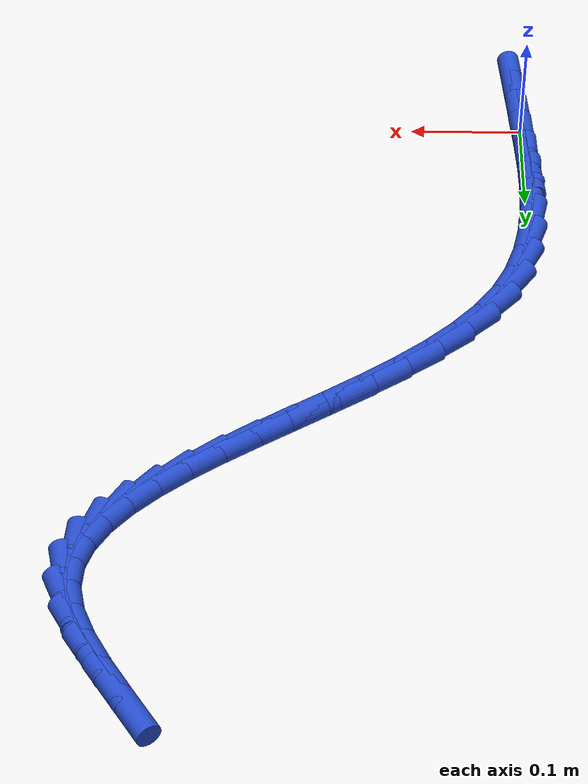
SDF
<sdf version="1.6">
 <world name="default">
  <model name="ground_plane">
   <static>1</static>
   <link name="link">
    <collision name="collision">
     <geometry><plane><normal>0 0 1</normal><size>100 100</size></plane></geometry>
     <surface><friction><ode><mu>100</mu><mu2>50</mu2></ode></friction></surface>
    </collision>
    <visual name="visual">
     <cast_shadows>0</cast_shadows>
     <geometry><plane><normal>0 0 1</normal><size>100 100</size></plane></geometry>
     <material>
      <script><uri>file://media/materials/scripts/gazebo.material</uri><name>Gazebo/WhiteGlow</name></script>
     </material>
    </visual>
   </link>
  </model>
  <model name="line">
   <link name="link_0">
    <pose>-1.2576745200831851e-17 6.938893903907228e-18 0.01 0 1.57 -1.494866581217393</pose>
    <collision name="collision">
     <geometry><cylinder><radius>0.01</radius><length>0.08</length></cylinder></geometry>
    </collision>
    <visual name="visual">
     <material>
      <script><name>Gazebo/Blue</name><uri>file://media/materials/scripts/gazebo.material</uri></script>
     </material>
     <geometry><cylinder><radius>0.01</radius><length>0.08</length></cylinder></geometry>
    </visual>
   </link>
   <link name="link_1">
    <pose>-0.0022657340430550727 0.029782506438946674 0.01 0 1.57 -1.5117864989916552</pose>
    <collision name="collision">
     <geometry><cylinder><radius>0.01</radius><length>0.08</length></cylinder></geometry>
    </collision>
    <visual name="visual">
     <material>
      <script><name>Gazebo/Blue</name><uri>file://media/materials/scripts/gazebo.material</uri></script>
     </material>
     <geometry><cylinder><radius>0.01</radius><length>0.08</length></cylinder></geometry>
    </visual>
   </link>
   <link name="link_2">
    <pose>-0.0040357827391061755 0.059743510461020305 0.01 0 1.57 -1.5465241977232782</pose>
    <collision name="collision">
     <geometry><cylinder><radius>0.01</radius><length>0.08</length></cylinder></geometry>
    </collision>
    <visual name="visual">
     <material>
      <script><name>Gazebo/Blue</name><uri>file://media/materials/scripts/gazebo.material</uri></script>
     </material>
     <geometry><cylinder><radius>0.01</radius><length>0.08</length></cylinder></geometry>
    </visual>
   </link>
   <link name="link_3">
    <pose>-0.004761638501300378 0.08964254452626104 0.01 0 1.57 1.5415160338145841</pose>
    <collision name="collision">
     <geometry><cylinder><radius>0.01</radius><length>0.08</length></cylinder></geometry>
    </collision>
    <visual name="visual">
     <material>
      <script><name>Gazebo/Blue</name><uri>file://media/materials/scripts/gazebo.material</uri></script>
     </material>
     <geometry><cylinder><radius>0.01</radius><length>0.08</length></cylinder></geometry>
    </visual>
   </link>
   <link name="link_4">
    <pose>-0.003894793742784732 0.11923914109470891 0.01 0 1.57 1.4676296312365655</pose>
    <collision name="collision">
     <geometry><cylinder><radius>0.01</radius><length>0.08</length></cylinder></geometry>
    </collision>
    <visual name="visual">
     <material>
      <script><name>Gazebo/Blue</name><uri>file://media/materials/scripts/gazebo.material</uri></script>
     </material>
     <geometry><cylinder><radius>0.01</radius><length>0.08</length></cylinder></geometry>
    </visual>
   </link>
   <link name="link_5">
    <pose>-0.0008867408767062931 0.14829283262640403 0.01 0 1.57 1.37191471027893</pose>
    <collision name="collision">
     <geometry><cylinder><radius>0.01</radius><length>0.08</length></cylinder></geometry>
    </collision>
    <visual name="visual">
     <material>
      <script><name>Gazebo/Blue</name><uri>file://media/materials/scripts/gazebo.material</uri></script>
     </material>
     <geometry><cylinder><radius>0.01</radius><length>0.08</length></cylinder></geometry>
    </visual>
   </link>
   <link name="link_6">
    <pose>0.004811027683787888 0.17656315158138655 0.01 0 1.57 1.2538817009695729</pose>
    <collision name="collision">
     <geometry><cylinder><radius>0.01</radius><length>0.08</length></cylinder></geometry>
    </collision>
    <visual name="visual">
     <material>
      <script><name>Gazebo/Blue</name><uri>file://media/materials/scripts/gazebo.material</uri></script>
     </material>
     <geometry><cylinder><radius>0.01</radius><length>0.08</length></cylinder></geometry>
    </visual>
   </link>
   <link name="link_7">
    <pose>0.013747019525550757 0.20380963041969663 0.01 0 1.57 1.115445793027237</pose>
    <collision name="collision">
     <geometry><cylinder><radius>0.01</radius><length>0.08</length></cylinder></geometry>
    </collision>
    <visual name="visual">
     <material>
      <script><name>Gazebo/Blue</name><uri>file://media/materials/scripts/gazebo.material</uri></script>
     </material>
     <geometry><cylinder><radius>0.01</radius><length>0.08</length></cylinder></geometry>
    </visual>
   </link>
   <link name="link_8">
    <pose>0.026469742235435245 0.22979180160137413 0.01 0 1.57 0.9684534557032066</pose>
    <collision name="collision">
     <geometry><cylinder><radius>0.01</radius><length>0.08</length></cylinder></geometry>
    </collision>
    <visual name="visual">
     <material>
      <script><name>Gazebo/Blue</name><uri>file://media/materials/scripts/gazebo.material</uri></script>
     </material>
     <geometry><cylinder><radius>0.01</radius><length>0.08</length></cylinder></geometry>
    </visual>
   </link>
   <link name="link_9">
    <pose>0.043342757095608635 0.25433144988760825 0.01 0 1.57 0.8452526352798901</pose>
    <collision name="collision">
     <geometry><cylinder><radius>0.01</radius><length>0.08</length></cylinder></geometry>
    </collision>
    <visual name="visual">
     <material>
      <script><name>Gazebo/Blue</name><uri>file://media/materials/scripts/gazebo.material</uri></script>
     </material>
     <geometry><cylinder><radius>0.01</radius><length>0.08</length></cylinder></geometry>
    </visual>
   </link>
   <link name="link_10">
    <pose>0.06391367953497079 0.27752500465638674 0.01 0 1.57 0.7509488821139205</pose>
    <collision name="collision">
     <geometry><cylinder><radius>0.01</radius><length>0.08</length></cylinder></geometry>
    </collision>
    <visual name="visual">
     <material>
      <script><name>Gazebo/Blue</name><uri>file://media/materials/scripts/gazebo.material</uri></script>
     </material>
     <geometry><cylinder><radius>0.01</radius><length>0.08</length></cylinder></geometry>
    </visual>
   </link>
   <link name="link_11">
    <pose>0.0875051781719609 0.2995446116219125 0.01 0 1.57 0.6810572236037761</pose>
    <collision name="collision">
     <geometry><cylinder><radius>0.01</radius><length>0.08</length></cylinder></geometry>
    </collision>
    <visual name="visual">
     <material>
      <script><name>Gazebo/Blue</name><uri>file://media/materials/scripts/gazebo.material</uri></script>
     </material>
     <geometry><cylinder><radius>0.01</radius><length>0.08</length></cylinder></geometry>
    </visual>
   </link>
   <link name="link_12">
    <pose>0.11343991451883886 0.320562418890304 0.01 0 1.57 0.6315152533288507</pose>
    <collision name="collision">
     <geometry><cylinder><radius>0.01</radius><length>0.08</length></cylinder></geometry>
    </collision>
    <visual name="visual">
     <material>
      <script><name>Gazebo/Blue</name><uri>file://media/materials/scripts/gazebo.material</uri></script>
     </material>
     <geometry><cylinder><radius>0.01</radius><length>0.08</length></cylinder></geometry>
    </visual>
   </link>
   <link name="link_13">
    <pose>0.14104055008786476 0.34075057456767993 0.01 0 1.57 0.5993261322269449</pose>
    <collision name="collision">
     <geometry><cylinder><radius>0.01</radius><length>0.08</length></cylinder></geometry>
    </collision>
    <visual name="visual">
     <material>
      <script><name>Gazebo/Blue</name><uri>file://media/materials/scripts/gazebo.material</uri></script>
     </material>
     <geometry><cylinder><radius>0.01</radius><length>0.08</length></cylinder></geometry>
    </visual>
   </link>
   <link name="link_14">
    <pose>0.16962974639129857 0.3602812267601588 0.01 0 1.57 0.5826742077434577</pose>
    <collision name="collision">
     <geometry><cylinder><radius>0.01</radius><length>0.08</length></cylinder></geometry>
    </collision>
    <visual name="visual">
     <material>
      <script><name>Gazebo/Blue</name><uri>file://media/materials/scripts/gazebo.material</uri></script>
     </material>
     <geometry><cylinder><radius>0.01</radius><length>0.08</length></cylinder></geometry>
    </visual>
   </link>
   <link name="link_15">
    <pose>0.1985301649414002 0.3793265235738593 0.01 0 1.57 0.5809144257593694</pose>
    <collision name="collision">
     <geometry><cylinder><radius>0.01</radius><length>0.08</length></cylinder></geometry>
    </collision>
    <visual name="visual">
     <material>
      <script><name>Gazebo/Blue</name><uri>file://media/materials/scripts/gazebo.material</uri></script>
     </material>
     <geometry><cylinder><radius>0.01</radius><length>0.08</length></cylinder></geometry>
    </visual>
   </link>
   <link name="link_16">
    <pose>0.22706446725042975 0.3980586131149004 0.01 0 1.57 0.5946165105800073</pose>
    <collision name="collision">
     <geometry><cylinder><radius>0.01</radius><length>0.08</length></cylinder></geometry>
    </collision>
    <visual name="visual">
     <material>
      <script><name>Gazebo/Blue</name><uri>file://media/materials/scripts/gazebo.material</uri></script>
     </material>
     <geometry><cylinder><radius>0.01</radius><length>0.08</length></cylinder></geometry>
    </visual>
   </link>
   <link name="link_17">
    <pose>0.2545553148306471 0.41664964348940003 0.01 0 1.57 0.6257505566522185</pose>
    <collision name="collision">
     <geometry><cylinder><radius>0.01</radius><length>0.08</length></cylinder></geometry>
    </collision>
    <visual name="visual">
     <material>
      <script><name>Gazebo/Blue</name><uri>file://media/materials/scripts/gazebo.material</uri></script>
     </material>
     <geometry><cylinder><radius>0.01</radius><length>0.08</length></cylinder></geometry>
    </visual>
   </link>
   <link name="link_18">
    <pose>0.2803253691943123 0.4352717628034775 0.01 0 1.57 0.6780667402587</pose>
    <collision name="collision">
     <geometry><cylinder><radius>0.01</radius><length>0.08</length></cylinder></geometry>
    </collision>
    <visual name="visual">
     <material>
      <script><name>Gazebo/Blue</name><uri>file://media/materials/scripts/gazebo.material</uri></script>
     </material>
     <geometry><cylinder><radius>0.01</radius><length>0.08</length></cylinder></geometry>
    </visual>
   </link>
   <link name="link_19">
    <pose>0.30369729185368527 0.4540971191632512 0.01 0 1.57 0.7576637880578666</pose>
    <collision name="collision">
     <geometry><cylinder><radius>0.01</radius><length>0.08</length></cylinder></geometry>
    </collision>
    <visual name="visual">
     <material>
      <script><name>Gazebo/Blue</name><uri>file://media/materials/scripts/gazebo.material</uri></script>
     </material>
     <geometry><cylinder><radius>0.01</radius><length>0.08</length></cylinder></geometry>
    </visual>
   </link>
   <link name="link_20">
    <pose>0.323993744321026 0.4732978606748395 0.01 0 1.57 0.8734712346691922</pose>
    <collision name="collision">
     <geometry><cylinder><radius>0.01</radius><length>0.08</length></cylinder></geometry>
    </collision>
    <visual name="visual">
     <material>
      <script><name>Gazebo/Blue</name><uri>file://media/materials/scripts/gazebo.material</uri></script>
     </material>
     <geometry><cylinder><radius>0.01</radius><length>0.08</length></cylinder></geometry>
    </visual>
   </link>
   <link name="link_21">
    <pose>0.34053738810859463 0.49304613544436127 0.01 0 1.57 1.036407786492608</pose>
    <collision name="collision">
     <geometry><cylinder><radius>0.01</radius><length>0.08</length></cylinder></geometry>
    </collision>
    <visual name="visual">
     <material>
      <script><name>Gazebo/Blue</name><uri>file://media/materials/scripts/gazebo.material</uri></script>
     </material>
     <geometry><cylinder><radius>0.01</radius><length>0.08</length></cylinder></geometry>
    </visual>
   </link>
   <link name="link_22">
    <pose>0.35265088472865097 0.5135140915779353 0.01 0 1.57 1.2538533732736625</pose>
    <collision name="collision">
     <geometry><cylinder><radius>0.01</radius><length>0.08</length></cylinder></geometry>
    </collision>
    <visual name="visual">
     <material>
      <script><name>Gazebo/Blue</name><uri>file://media/materials/scripts/gazebo.material</uri></script>
     </material>
     <geometry><cylinder><radius>0.01</radius><length>0.08</length></cylinder></geometry>
    </visual>
   </link>
   <link name="link_23">
    <pose>0.35965689569345494 0.5348738771816798 0.01 0 1.57 1.5163905753766793</pose>
    <collision name="collision">
     <geometry><cylinder><radius>0.01</radius><length>0.08</length></cylinder></geometry>
    </collision>
    <visual name="visual">
     <material>
      <script><name>Gazebo/Blue</name><uri>file://media/materials/scripts/gazebo.material</uri></script>
     </material>
     <geometry><cylinder><radius>0.01</radius><length>0.08</length></cylinder></geometry>
    </visual>
   </link>
   <link name="link_24">
    <pose>0.3608780825152668 0.5572976403617137 0.01 0 1.57 -1.356409938980425</pose>
    <collision name="collision">
     <geometry><cylinder><radius>0.01</radius><length>0.08</length></cylinder></geometry>
    </collision>
    <visual name="visual">
     <material>
      <script><name>Gazebo/Blue</name><uri>file://media/materials/scripts/gazebo.material</uri></script>
     </material>
     <geometry><cylinder><radius>0.01</radius><length>0.08</length></cylinder></geometry>
    </visual>
   </link>
   <link name="link_25">
    <pose>0.3557306147727348 0.5809388951609028 0.01 0 1.57 -1.1592149447651108</pose>
    <collision name="collision">
     <geometry><cylinder><radius>0.01</radius><length>0.08</length></cylinder></geometry>
    </collision>
    <visual name="visual">
     <material>
      <script><name>Gazebo/Blue</name><uri>file://media/materials/scripts/gazebo.material</uri></script>
     </material>
     <geometry><cylinder><radius>0.01</radius><length>0.08</length></cylinder></geometry>
    </visual>
   </link>
   <link name="link_26">
    <pose>0.34492504212954866 0.6056932146624767 0.01 0 1.57 -1.0459596506561195</pose>
    <collision name="collision">
     <geometry><cylinder><radius>0.01</radius><length>0.08</length></cylinder></geometry>
    </collision>
    <visual name="visual">
     <material>
      <script><name>Gazebo/Blue</name><uri>file://media/materials/scripts/gazebo.material</uri></script>
     </material>
     <geometry><cylinder><radius>0.01</radius><length>0.08</length></cylinder></geometry>
    </visual>
   </link>
   <link name="link_27">
    <pose>0.3301173218746331 0.6312677733850403 0.01 0 1.57 -0.9898856624915686</pose>
    <collision name="collision">
     <geometry><cylinder><radius>0.01</radius><length>0.08</length></cylinder></geometry>
    </collision>
    <visual name="visual">
     <material>
      <script><name>Gazebo/Blue</name><uri>file://media/materials/scripts/gazebo.material</uri></script>
     </material>
     <geometry><cylinder><radius>0.01</radius><length>0.08</length></cylinder></geometry>
    </visual>
   </link>
   <link name="link_28">
    <pose>0.3129849581739691 0.6573654520372059 0.01 0 1.57 -0.9767591322554221</pose>
    <collision name="collision">
     <geometry><cylinder><radius>0.01</radius><length>0.08</length></cylinder></geometry>
    </collision>
    <visual name="visual">
     <material>
      <script><name>Gazebo/Blue</name><uri>file://media/materials/scripts/gazebo.material</uri></script>
     </material>
     <geometry><cylinder><radius>0.01</radius><length>0.08</length></cylinder></geometry>
    </visual>
   </link>
   <link name="link_268">
    <pose>0.0047092215985957845 -0.05848491252851955 0.01 0 1.57 -1.4889095565327963</pose>
    <collision name="collision">
     <geometry><cylinder><radius>0.01</radius><length>0.08</length></cylinder></geometry>
    </collision>
    <visual name="visual">
     <material>
      <script><name>Gazebo/Blue</name><uri>file://media/materials/scripts/gazebo.material</uri></script>
     </material>
     <geometry><cylinder><radius>0.01</radius><length>0.08</length></cylinder></geometry>
    </visual>
   </link>
   <link name="link_269">
    <pose>0.0023235027805667335 -0.029415699135840332 0.01 0 1.57 -1.4919714611109127</pose>
    <collision name="collision">
     <geometry><cylinder><radius>0.01</radius><length>0.08</length></cylinder></geometry>
    </collision>
    <visual name="visual">
     <material>
      <script><name>Gazebo/Blue</name><uri>file://media/materials/scripts/gazebo.material</uri></script>
     </material>
     <geometry><cylinder><radius>0.01</radius><length>0.08</length></cylinder></geometry>
    </visual>
   </link>
   <link name="link_270">
    <pose>-3.0357660829594124e-18 -1.1102230246251565e-16 0.01 0 1.57 -1.4913143244239486</pose>
    <collision name="collision">
     <geometry><cylinder><radius>0.01</radius><length>0.08</length></cylinder></geometry>
    </collision>
    <visual name="visual">
     <material>
      <script><name>Gazebo/Blue</name><uri>file://media/materials/scripts/gazebo.material</uri></script>
     </material>
     <geometry><cylinder><radius>0.01</radius><length>0.08</length></cylinder></geometry>
    </visual>
   </link>
   <link name="link_271">
    <pose>-0.002376325020415801 0.029834664258927876 0.01 0 1.57 -1.4870980925990829</pose>
    <collision name="collision">
     <geometry><cylinder><radius>0.01</radius><length>0.08</length></cylinder></geometry>
    </collision>
    <visual name="visual">
     <material>
      <script><name>Gazebo/Blue</name><uri>file://media/materials/scripts/gazebo.material</uri></script>
     </material>
     <geometry><cylinder><radius>0.01</radius><length>0.08</length></cylinder></geometry>
    </visual>
   </link>
   <link name="link_272">
    <pose>-0.004920510557991825 0.06016077302086768 0.01 0 1.57 -1.4891886242152887</pose>
    <collision name="collision">
     <geometry><cylinder><radius>0.01</radius><length>0.08</length></cylinder></geometry>
    </collision>
    <visual name="visual">
     <material>
      <script><name>Gazebo/Blue</name><uri>file://media/materials/scripts/gazebo.material</uri></script>
     </material>
     <geometry><cylinder><radius>0.01</radius><length>0.08</length></cylinder></geometry>
    </visual>
   </link>
  </model>
 </world>
</sdf>
